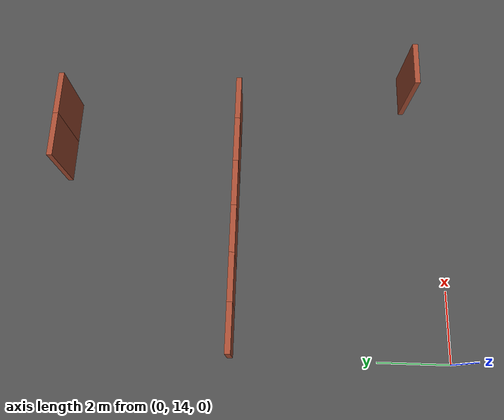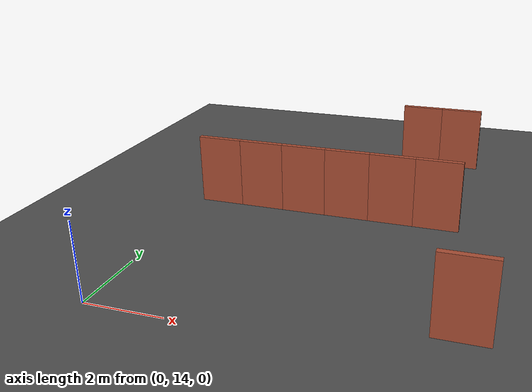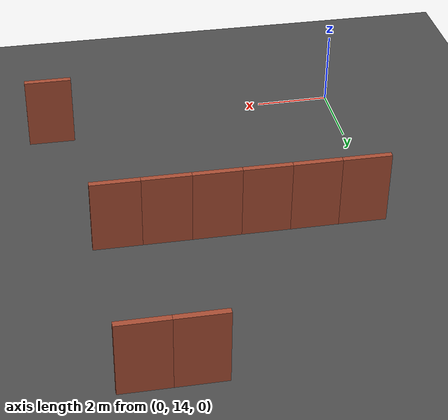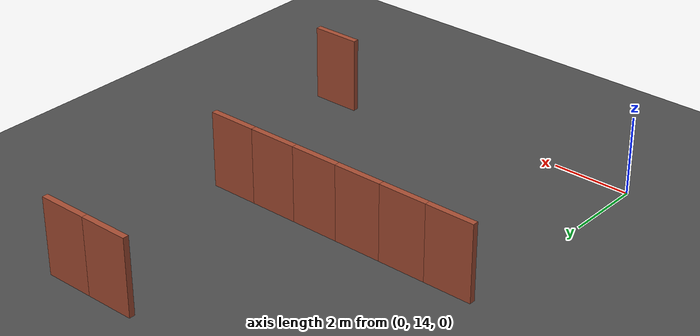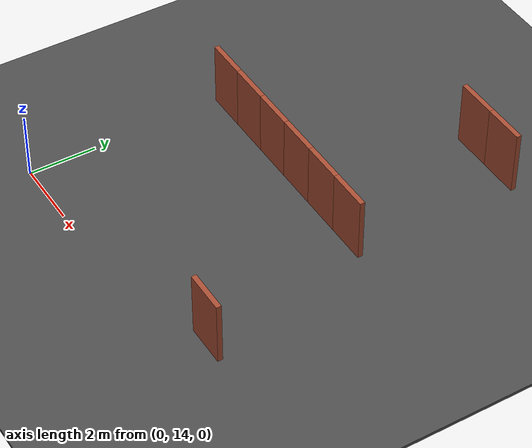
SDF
<sdf version="1.6">
 <world name="default">
  <model name="ground_plane">
   <static>1</static>
   <link name="link">
    <collision name="collision">
     <geometry><plane><normal>0 0 1</normal><size>100 100</size></plane></geometry>
     <surface><friction><ode><mu>100</mu><mu2>50</mu2></ode></friction></surface>
    </collision>
    <visual name="visual">
     <cast_shadows>0</cast_shadows>
     <geometry><plane><normal>0 0 1</normal><size>100 100</size></plane></geometry>
     <material>
      <script><uri>file://media/materials/scripts/gazebo.material</uri><name>Gazebo/Grey</name></script>
     </material>
    </visual>
   </link>
  </model>
  <model name="asphalt_plane">
   <static>1</static>
   <link name="link">
    <collision name="collision"><geometry><box><size>100 100 0.1</size></box></geometry></collision>
    <visual name="visual">
     <cast_shadows>0</cast_shadows>
     <geometry><box><size>100 100 0.1</size></box></geometry>
     <material>
      <script>
       <uri>model://asphalt_plane/materials/scripts</uri>
       <uri>model://asphalt_plane/materials/textures</uri>
       <name>vrc/asphalt</name>
      </script>
     </material>
    </visual>
   </link>
  </model>
  <model name="brick_wall_20_28_vertical1">
   <pose>0.625 20 0 0 -0 0</pose>
   <link name="Wall_0">
    <collision name="Wall_0_Collision">
     <geometry><box><size>1.25 0.15 2</size></box></geometry>
     <pose>0 0 1 0 -0 0</pose>
    </collision>
    <visual name="Wall_0_Visual">
     <pose>0 0 1 0 -0 0</pose>
     <geometry><box><size>1.25 0.15 2</size></box></geometry>
     <material>
      <script><uri>file://media/materials/scripts/gazebo.material</uri><name>Gazebo/Bricks</name></script>
      <ambient>1 1 1 1</ambient>
     </material>
     <meta><layer>0</layer></meta>
    </visual>
   </link>
   <static>1</static>
  </model>
  <model name="brick_wall_21_28_vertical1">
   <pose>3.125 20 0 0 -0 0</pose>
   <link name="Wall_0">
    <collision name="Wall_0_Collision">
     <geometry><box><size>1.25 0.15 2</size></box></geometry>
     <pose>0 0 1 0 -0 0</pose>
    </collision>
    <visual name="Wall_0_Visual">
     <pose>0 0 1 0 -0 0</pose>
     <geometry><box><size>1.25 0.15 2</size></box></geometry>
     <material>
      <script><uri>file://media/materials/scripts/gazebo.material</uri><name>Gazebo/Bricks</name></script>
      <ambient>1 1 1 1</ambient>
     </material>
     <meta><layer>0</layer></meta>
    </visual>
   </link>
   <static>1</static>
  </model>
  <model name="brick_wall_21_28_vertical2">
   <pose>1.875 20 0 0 -0 0</pose>
   <link name="Wall_0">
    <collision name="Wall_0_Collision">
     <geometry><box><size>1.25 0.15 2</size></box></geometry>
     <pose>0 0 1 0 -0 0</pose>
    </collision>
    <visual name="Wall_0_Visual">
     <pose>0 0 1 0 -0 0</pose>
     <geometry><box><size>1.25 0.15 2</size></box></geometry>
     <material>
      <script><uri>file://media/materials/scripts/gazebo.material</uri><name>Gazebo/Bricks</name></script>
      <ambient>1 1 1 1</ambient>
     </material>
     <meta><layer>0</layer></meta>
    </visual>
   </link>
   <static>1</static>
  </model>
  <model name="brick_wall_22_28_vertical1">
   <pose>5.625 20 0 0 -0 0</pose>
   <link name="Wall_0">
    <collision name="Wall_0_Collision">
     <geometry><box><size>1.25 0.15 2</size></box></geometry>
     <pose>0 0 1 0 -0 0</pose>
    </collision>
    <visual name="Wall_0_Visual">
     <pose>0 0 1 0 -0 0</pose>
     <geometry><box><size>1.25 0.15 2</size></box></geometry>
     <material>
      <script><uri>file://media/materials/scripts/gazebo.material</uri><name>Gazebo/Bricks</name></script>
      <ambient>1 1 1 1</ambient>
     </material>
     <meta><layer>0</layer></meta>
    </visual>
   </link>
   <static>1</static>
  </model>
  <model name="brick_wall_22_28_vertical2">
   <pose>4.375 20 0 0 -0 0</pose>
   <link name="Wall_0">
    <collision name="Wall_0_Collision">
     <geometry><box><size>1.25 0.15 2</size></box></geometry>
     <pose>0 0 1 0 -0 0</pose>
    </collision>
    <visual name="Wall_0_Visual">
     <pose>0 0 1 0 -0 0</pose>
     <geometry><box><size>1.25 0.15 2</size></box></geometry>
     <material>
      <script><uri>file://media/materials/scripts/gazebo.material</uri><name>Gazebo/Bricks</name></script>
      <ambient>1 1 1 1</ambient>
     </material>
     <meta><layer>0</layer></meta>
    </visual>
   </link>
   <static>1</static>
  </model>
  <model name="brick_wall_22_30_vertical1">
   <pose>5.625 25 0 0 -0 0</pose>
   <link name="Wall_0">
    <collision name="Wall_0_Collision">
     <geometry><box><size>1.25 0.15 2</size></box></geometry>
     <pose>0 0 1 0 -0 0</pose>
    </collision>
    <visual name="Wall_0_Visual">
     <pose>0 0 1 0 -0 0</pose>
     <geometry><box><size>1.25 0.15 2</size></box></geometry>
     <material>
      <script><uri>file://media/materials/scripts/gazebo.material</uri><name>Gazebo/Bricks</name></script>
      <ambient>1 1 1 1</ambient>
     </material>
     <meta><layer>0</layer></meta>
    </visual>
   </link>
   <static>1</static>
  </model>
  <model name="brick_wall_23_26_vertical1">
   <pose>8.125 15 0 0 -0 0</pose>
   <link name="Wall_0">
    <collision name="Wall_0_Collision">
     <geometry><box><size>1.25 0.15 2</size></box></geometry>
     <pose>0 0 1 0 -0 0</pose>
    </collision>
    <visual name="Wall_0_Visual">
     <pose>0 0 1 0 -0 0</pose>
     <geometry><box><size>1.25 0.15 2</size></box></geometry>
     <material>
      <script><uri>file://media/materials/scripts/gazebo.material</uri><name>Gazebo/Bricks</name></script>
      <ambient>1 1 1 1</ambient>
     </material>
     <meta><layer>0</layer></meta>
    </visual>
   </link>
   <static>1</static>
  </model>
  <model name="brick_wall_23_28_vertical2">
   <pose>6.875 20 0 0 -0 0</pose>
   <link name="Wall_0">
    <collision name="Wall_0_Collision">
     <geometry><box><size>1.25 0.15 2</size></box></geometry>
     <pose>0 0 1 0 -0 0</pose>
    </collision>
    <visual name="Wall_0_Visual">
     <pose>0 0 1 0 -0 0</pose>
     <geometry><box><size>1.25 0.15 2</size></box></geometry>
     <material>
      <script><uri>file://media/materials/scripts/gazebo.material</uri><name>Gazebo/Bricks</name></script>
      <ambient>1 1 1 1</ambient>
     </material>
     <meta><layer>0</layer></meta>
    </visual>
   </link>
   <static>1</static>
  </model>
  <model name="brick_wall_23_30_vertical2">
   <pose>6.875 25 0 0 -0 0</pose>
   <link name="Wall_0">
    <collision name="Wall_0_Collision">
     <geometry><box><size>1.25 0.15 2</size></box></geometry>
     <pose>0 0 1 0 -0 0</pose>
    </collision>
    <visual name="Wall_0_Visual">
     <pose>0 0 1 0 -0 0</pose>
     <geometry><box><size>1.25 0.15 2</size></box></geometry>
     <material>
      <script><uri>file://media/materials/scripts/gazebo.material</uri><name>Gazebo/Bricks</name></script>
      <ambient>1 1 1 1</ambient>
     </material>
     <meta><layer>0</layer></meta>
    </visual>
   </link>
   <static>1</static>
  </model>
 </world>
</sdf>
